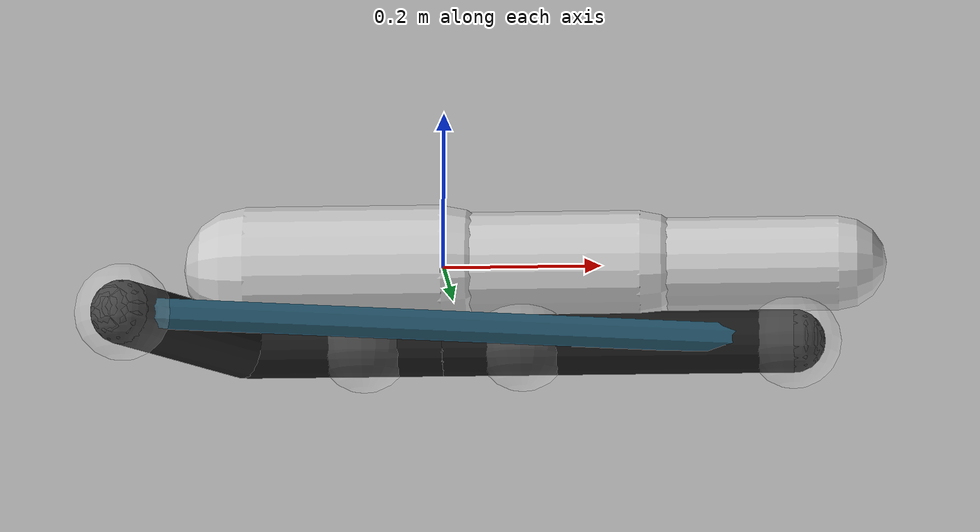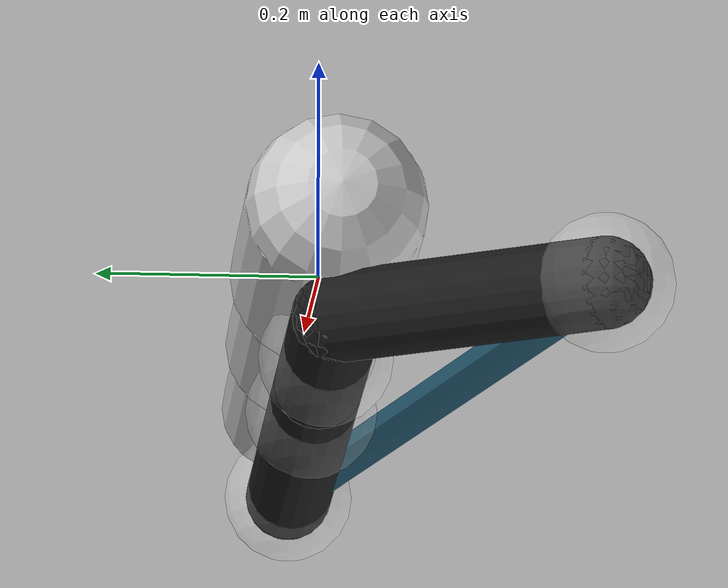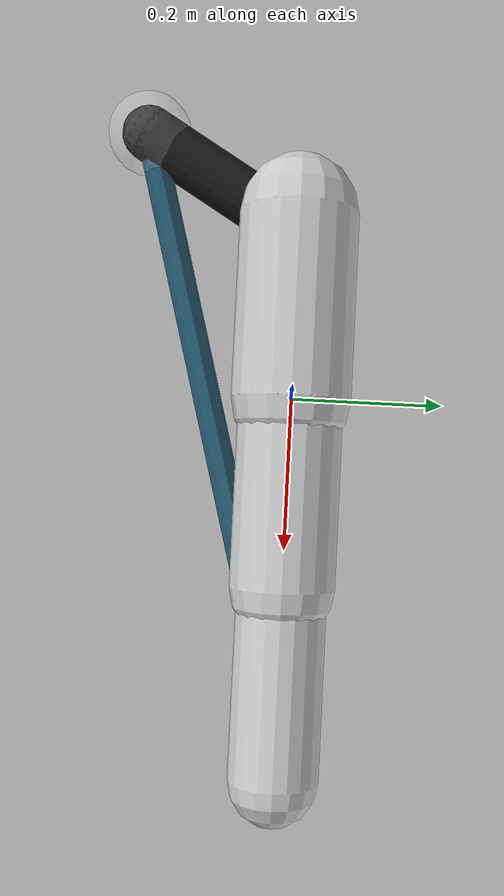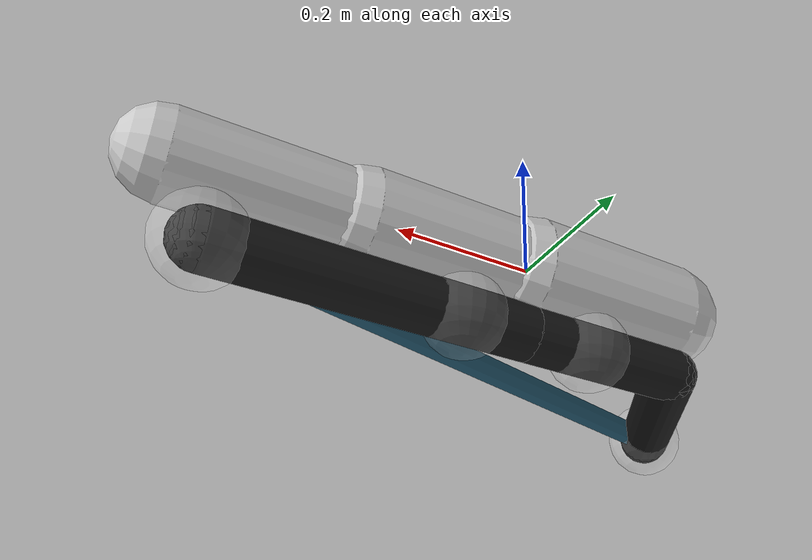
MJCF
<mujoco model="finger with orthotic">
    <option timestep="0.001" iterations="100" solver="Newton" tolerance="1e-8" integrator="implicitfast">
        <flag gravity="disable" contact="disable" energy="enable" />
    </option>

    <compiler angle="degree" />

    <visual>
        <rgba haze=".3 .3 .3 1" />
        <global offwidth="1920" offheight="1080" />
    </visual>

    <default>
        <joint type="hinge" pos="0 0 0" axis="0 0 1" stiffness="0.22194759146666668" damping="0.010179691733333333" />
        <site size="0.06" rgba="1 1 1 .1" />
        <geom type="capsule" size="0.01" rgba=".1 .1 .1 1" />
        <tendon width="0.01" rgba="0.141 0.345 0.437 1" />
    </default>

    <asset>
        <texture type="skybox" builtin="gradient" rgb1="1 1 1" rgb2="1 1 1" width="512" height="512" />
        <texture name="texplane" type="2d" builtin="checker" rgb1="1 1 1" rgb2="1 1 1" width="512" height="512" mark="cross" markrgb="1 1 1" />
        <material name="matplane" reflectance="0.3" texture="texplane" texrepeat="1 1" texuniform="true" />
    </asset>

    <worldbody>
        <light directional="true" diffuse=".8 .8 .8" specular=".2 .2 .2" pos="0 0 -5" dir="0 0 1" />
        <camera name="cam" pos="0 0 -2.8" xyaxes="1.000 0 0 0 -1.000 0" />

        <body name="finger" pos="0 0 0">
            <geom name="finger1" type="capsule" size="0.08" fromto="0 0 0  -.25 0 0" rgba="0.8 0.8 0.8 1" />
            <site name="sPIPL" pos="-.1 0 0" />

            <body pos="0 0 0">
                <geom name="finger2" type="capsule" size="0.07" fromto="0 0 0  .25 0 0" rgba="0.8 0.8 0.8 1" />
                <joint name="PIP" pos="0 0 0" stiffness="0" damping="0" />
                <site name="sPIPR" pos=".1 0 0" />

                <body pos=".25 0 0">
                    <geom name="finger3" type="capsule" size="0.06" fromto="0 0 0  .25 0 0" rgba="0.8 0.8 0.8 1" />
                </body>
            </body>
        </body>

        <body name="orthosis" pos="0 0 -.1">
            <geom name="beamB" type="capsule" size="0.04" fromto="0.0 0.0 0.0 -0.25 -3.061616997868383e-17 0.0" />
            <site name="hBAL" pos="-.1 0 0" size="0.06" />

            <body name="Bnext" pos="0 0 0">
                <joint name="hingeBA" type="hinge" pos="0 0 0" axis="0 0 1" stiffness="0.22194759146666668" damping="0.010179691733333333" />
                <site name="hBAR" pos=".1 0 0" size="0.06" />
                <geom name="beamA" type="capsule" size="0.04" fromto="0.0 0.0 0.0 0.44208894052888476 0.0 0.0" />

                <body name="Anext" pos="0.44208894052888476 0.0 0.0">
                    <joint name="hingeAL" type="hinge" pos="0 0 0" axis="0 0 1" stiffness="0.22194759146666668" damping="0.010179691733333333" />
                    <geom name="smallBodyAL" type="sphere" size="0.04" pos="0 0 0" />
                    <site name="hAL" pos="0 0 0" size="0.06" />
                </body>
            </body>

            <geom name="beamD" type="capsule" size="0.04" fromto="-0.25 -3.061616997868383e-17 0.0 -0.38286025323016204 -0.22104447026444246 0.0" />
            <body name="Dnext" pos="-0.38286025323016204 -0.22104447026444246 0.0">
                <joint name="hingeDL" type="hinge" pos="0 0 0" axis="0 0 -1" stiffness="0.22194759146666668" damping="0.010179691733333333" />
                <geom name="smallBodyDL" type="sphere" size="0.04" pos="0 0 0" />
                <site name="hDL" pos="0 0 0" size="0.06" />
            </body>
        </body>
    </worldbody>

    <equality>

        <weld site1="hBAR" site2="sPIPR" />

    </equality>

    <tendon>
        <spatial name="bendingTendon" limited="true" range="0.7686452253125191 1.708100500694487" width="0.02" solimplimit="0 0.01 0.001 0.5 1" solreflimit="-0.13681108063507963 -0.0004666639656210167">
            <site site="hDL" />
            <site site="hAL" />
        </spatial>
        <spatial name="extensionTendon" limited="true" range="0 0.8540502503472435" width="0.02" solimplimit="0 0.01 0.001 0.5 1" solreflimit="-1838.2526172923422 -232.47812727561814">
            <site site="hDL" />
            <site site="hAL" />
        </spatial>
    </tendon>

    <actuator>
        <motor name="finger_bend" joint="PIP" ctrlrange="-10 10" gear="100" />
        <motor name="flexure_motor_BA" joint="hingeBA" gear="1" ctrlrange="0 0" />
        <motor name="flexure_motor_AL" joint="hingeAL" gear="1" ctrlrange="0 0" />
        <motor name="flexure_motor_DL" joint="hingeDL" gear="1" ctrlrange="0 0" />
        <motor name="tendon_nonlinear" tendon="bendingTendon" gear="1" ctrlrange="0 0" />
    </actuator>

    <sensor>
        <force name="finger_force" site="sPIPR" />
        <torque name="finger_torque" site="sPIPR" />
        <force name="tendon_force" site="hDL" />
    </sensor>
</mujoco>
